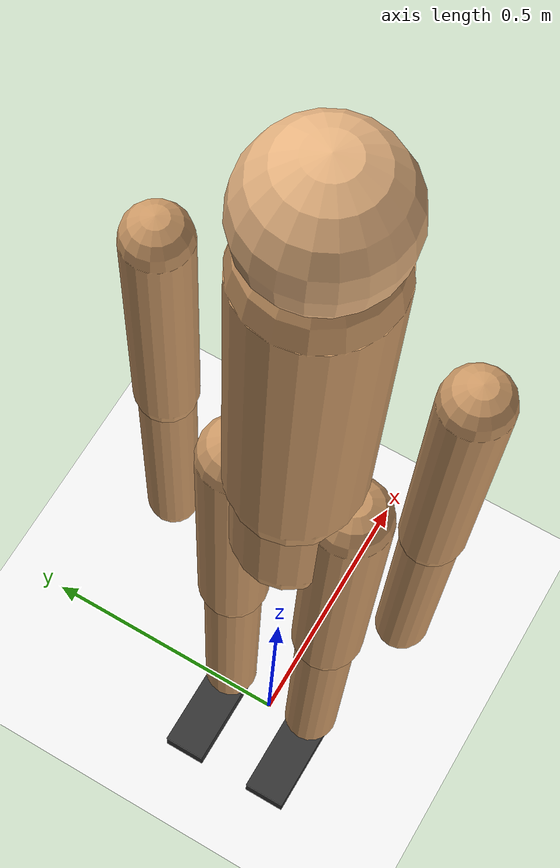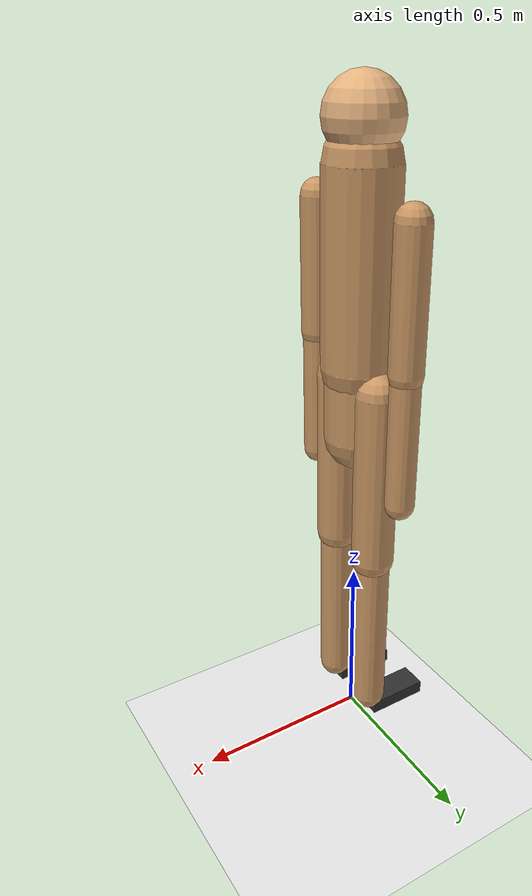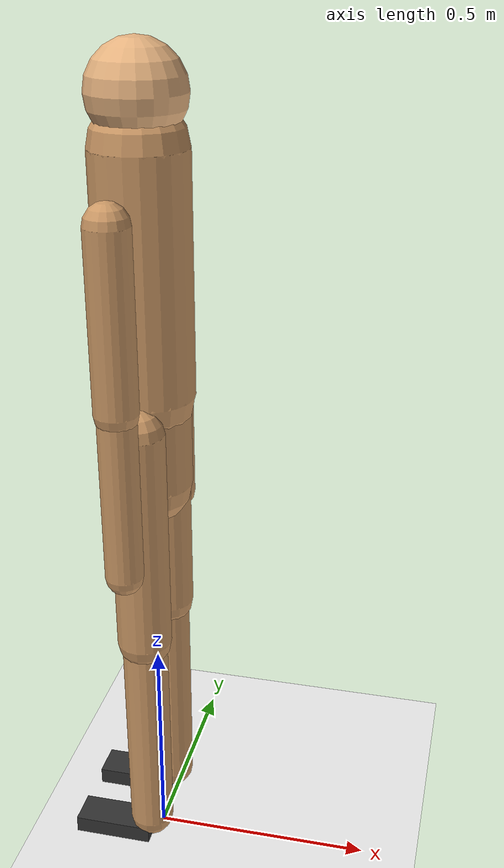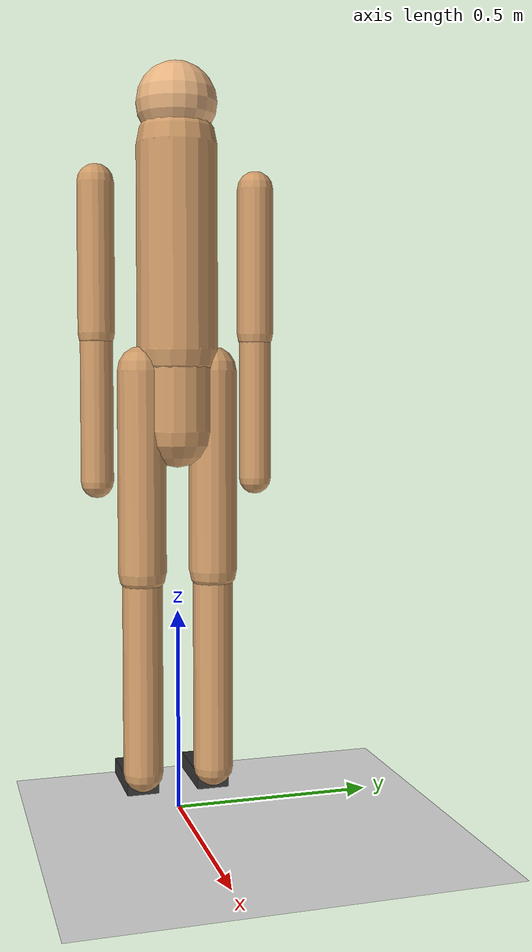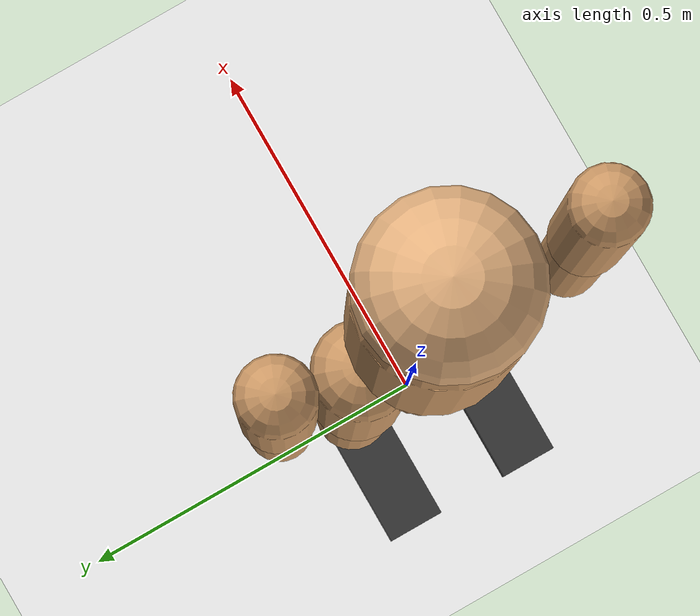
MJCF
<mujoco model="flat_humanoid">
    <compiler angle="degree" inertiafromgeom="true"/>
    <option timestep="0.002" integrator="RK4" gravity="0 0 -9.81" density="1000" viscosity="0.002"/>
    <visual>
        <global offheight="1080"/>
    </visual>

    <default>
        <joint damping="1" stiffness="0" limited="true" armature="0.01" frictionloss="0.01"/>
        <geom type="capsule" size="0.05 0.2" rgba="0.8 0.6 0.4 1" friction="0.8 0.1 0.1"/>
        <motor ctrllimited="true" ctrlrange="-1 1" gear="120"/>
    </default>

    <worldbody>
        <geom name="floor" type="plane" size="20 20 0.1" pos="0 0 0" rgba="0.95 0.95 0.95 1"/>

        <body name="torso" pos="0 0 1.4">
            <freejoint name="root"/>
            <geom name="torso_geom" size="0.1 0.25" pos="0 0 0"/>
            <geom name="torso_lower" size="0.09 0.2" pos="0 0 -0.25"/>

            <body name="head" pos="0 0 0.35">
                <geom size="0.1" type="sphere" rgba="0.9 0.7 0.5 1"/>
            </body>

            <body name="thigh_right" pos="0 -0.09 -0.3">
                <joint name="hip_right_y" axis="0 1 0" range="-45 60"/>
                <joint name="hip_right_x" axis="1 0 0" range="-30 30"/>
                <geom size="0.06 0.25" pos="0 0 -0.25"/>

                <body name="shin_right" pos="0 0 -0.5">
                    <joint name="knee_right" axis="0 1 0" range="-120 5"/>
                    <geom size="0.05 0.25" pos="0 0 -0.25"/>

                    <body name="foot_right" pos="0 0 -0.5">
                        <joint name="ankle_right" axis="1 0 0" range="-30 30"/>
                        <geom type="box" size="0.09 0.04 0.02" pos="-0.09 0 -0.04" rgba="0.2 0.2 0.2 1" friction="1 0.1 0.1"/>
                    </body>
                </body>
            </body>

            <body name="thigh_left" pos="0 0.09 -0.3">
                <joint name="hip_left_y" axis="0 1 0" range="-45 60"/>
                <joint name="hip_left_x" axis="1 0 0" range="-30 30"/>
                <geom size="0.06 0.25" pos="0 0 -0.25"/>

                <body name="shin_left" pos="0 0 -0.5">
                    <joint name="knee_left" axis="0 1 0" range="-120 5"/>
                    <geom size="0.05 0.25" pos="0 0 -0.25"/>

                    <body name="foot_left" pos="0 0 -0.5">
                        <joint name="ankle_left" axis="1 0 0" range="-30 30"/>
                        <geom type="box" size="0.09 0.04 0.02" pos="-0.09 0 -0.04" rgba="0.2 0.2 0.2 1" friction="1 0.1 0.1"/>
                    </body>
                </body>
            </body>

            <body name="upper_arm_right" pos="0 -0.2 0.15">
                <joint name="shoulder_right_y" axis="0 1 0" range="-90 90"/>
                <joint name="shoulder_right_x" axis="1 0 0" range="-90 45"/>
                <geom size="0.045 0.18" pos="0 0 -0.18"/>

                <body name="lower_arm_right" pos="0 0 -0.36">
                    <joint name="elbow_right" axis="0 1 0" range="-120 0"/>
                    <geom size="0.04 0.18" pos="0 0 -0.18"/>
                </body>
            </body>

            <body name="upper_arm_left" pos="0 0.2 0.15">
                <joint name="shoulder_left_y" axis="0 1 0" range="-90 90"/>
                <joint name="shoulder_left_x" axis="1 0 0" range="-45 90"/>
                <geom size="0.045 0.18" pos="0 0 -0.18"/>

                <body name="lower_arm_left" pos="0 0 -0.36">
                    <joint name="elbow_left" axis="0 1 0" range="-120 0"/>
                    <geom size="0.04 0.18" pos="0 0 -0.18"/>
                </body>
            </body>
        </body>
    </worldbody>

    <actuator>
        <motor name="hip_right_y_act" joint="hip_right_y"/>
        <motor name="hip_right_x_act" joint="hip_right_x"/>
        <motor name="knee_right_act" joint="knee_right"/>
        <motor name="ankle_right_act" joint="ankle_right"/>
        <motor name="hip_left_y_act" joint="hip_left_y"/>
        <motor name="hip_left_x_act" joint="hip_left_x"/>
        <motor name="knee_left_act" joint="knee_left"/>
        <motor name="ankle_left_act" joint="ankle_left"/>
        <motor name="shoulder_right_y_act" joint="shoulder_right_y"/>
        <motor name="shoulder_right_x_act" joint="shoulder_right_x"/>
        <motor name="elbow_right_act" joint="elbow_right"/>
        <motor name="shoulder_left_y_act" joint="shoulder_left_y"/>
        <motor name="shoulder_left_x_act" joint="shoulder_left_x"
        />
        <motor name="elbow_left_act" joint="elbow_left"/>
    </actuator>
</mujoco>
